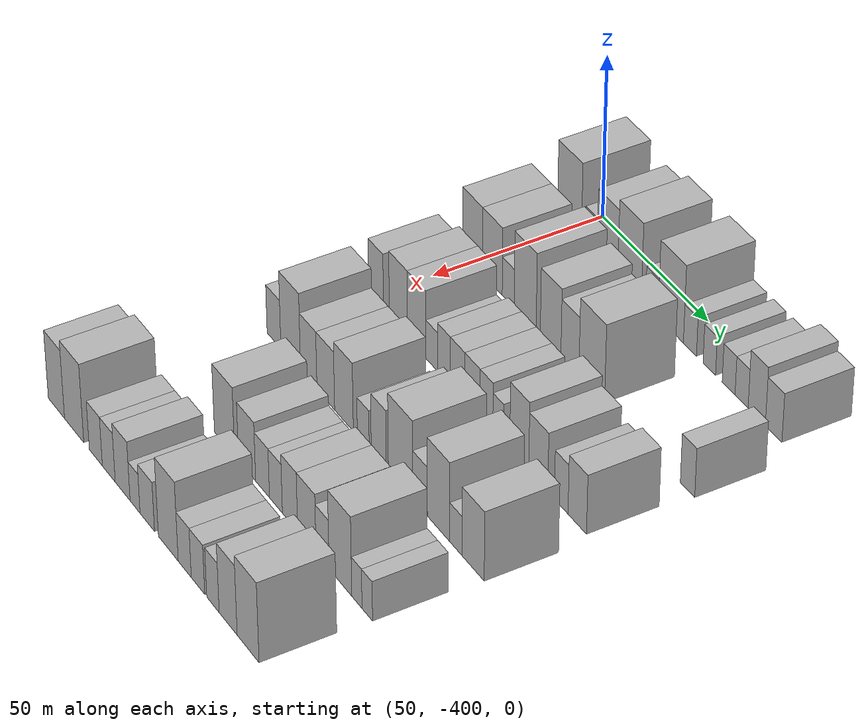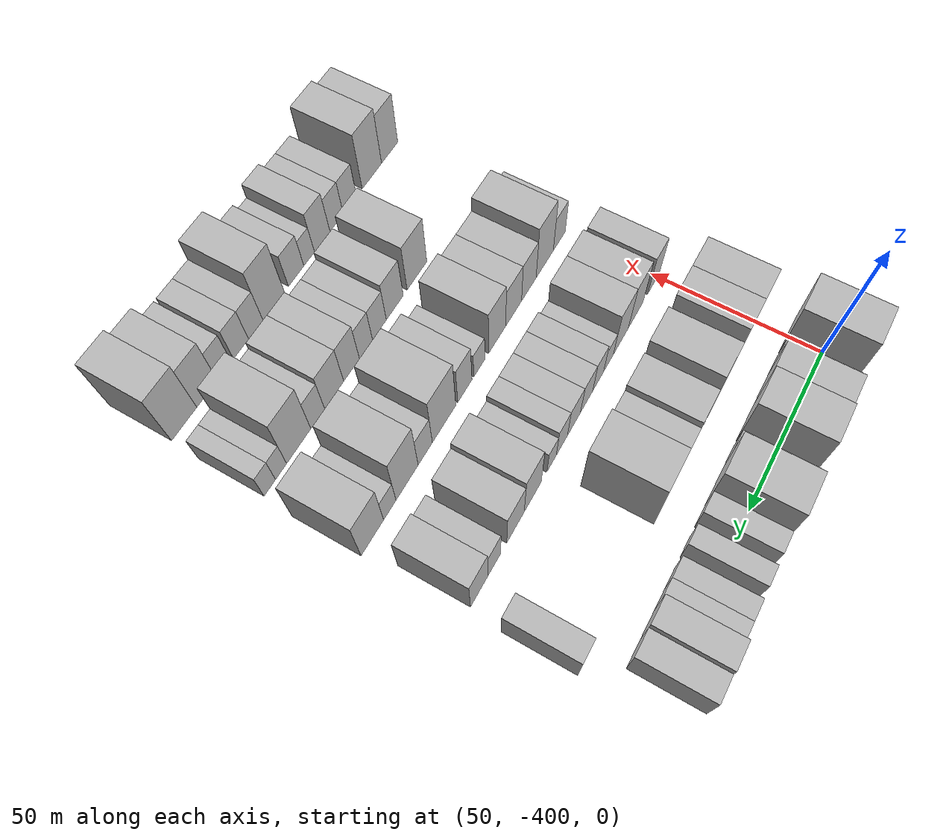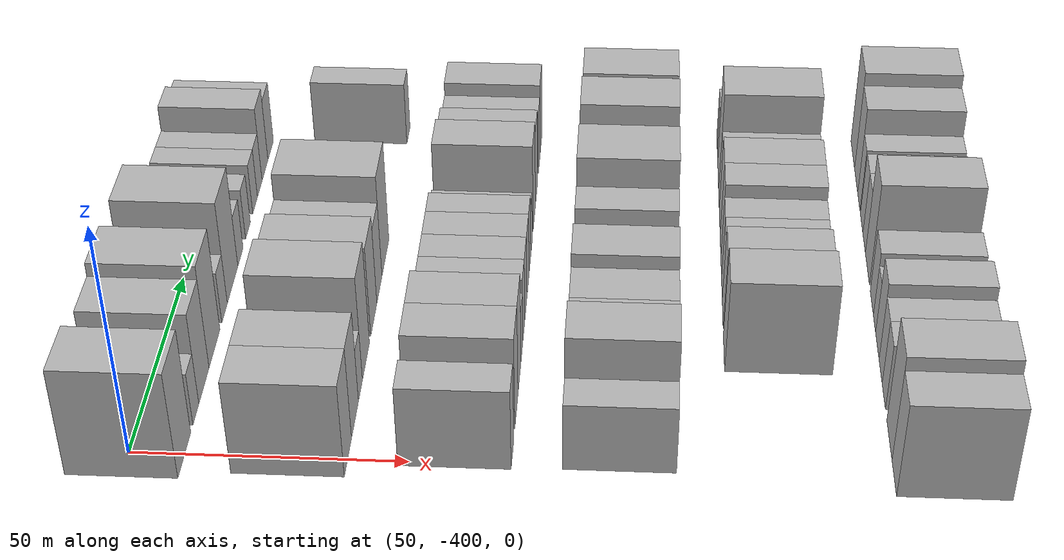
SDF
<sdf version="1.6">
 <world name="default">
  <model name="building_12">
   <static>1</static>
   <pose>50.0000 -400.1555 0 0.000000 0.000000 0.000000</pose>
   <link name="link">
    <pose>0 0 12.00 0 0 0</pose>
    <collision name="collision"><geometry><box><size>20.0000 11.7400 24.0000</size></box></geometry></collision>
    <visual name="visual">
     <cast_shadows>0</cast_shadows>
     <geometry><box><size>20.0000 11.7400 24.0000</size></box></geometry>
     <material>
      <script>
       <uri>model://HANNAS_wall/materials/scripts</uri>
       <uri>model://HANNAS_wall/materials/textures</uri>
       <name>vrc/HANNAS_wall</name>
      </script>
     </material>
    </visual>
   </link>
  </model>
  <model name="building_13">
   <static>1</static>
   <pose>50.0000 -389.4840 0 0.000000 0.000000 0.000000</pose>
   <link name="link">
    <pose>0 0 6.00 0 0 0</pose>
    <collision name="collision"><geometry><box><size>20.0000 5.6029 12.0000</size></box></geometry></collision>
    <visual name="visual">
     <cast_shadows>0</cast_shadows>
     <geometry><box><size>20.0000 5.6029 12.0000</size></box></geometry>
     <material>
      <script>
       <uri>model://HANNAS_wall/materials/scripts</uri>
       <uri>model://HANNAS_wall/materials/textures</uri>
       <name>vrc/HANNAS_wall</name>
      </script>
     </material>
    </visual>
   </link>
  </model>
  <model name="building_14">
   <static>1</static>
   <pose>50.0000 -381.6744 0 0.000000 0.000000 0.000000</pose>
   <link name="link">
    <pose>0 0 10.50 0 0 0</pose>
    <collision name="collision"><geometry><box><size>20.0000 10.0163 21.0000</size></box></geometry></collision>
    <visual name="visual">
     <cast_shadows>0</cast_shadows>
     <geometry><box><size>20.0000 10.0163 21.0000</size></box></geometry>
     <material>
      <script>
       <uri>model://HANNAS_wall/materials/scripts</uri>
       <uri>model://HANNAS_wall/materials/textures</uri>
       <name>vrc/HANNAS_wall</name>
      </script>
     </material>
    </visual>
   </link>
  </model>
  <model name="building_15">
   <static>1</static>
   <pose>50.0000 -371.0635 0 0.000000 0.000000 0.000000</pose>
   <link name="link">
    <pose>0 0 12.00 0 0 0</pose>
    <collision name="collision"><geometry><box><size>20.0000 11.2055 24.0000</size></box></geometry></collision>
    <visual name="visual">
     <cast_shadows>0</cast_shadows>
     <geometry><box><size>20.0000 11.2055 24.0000</size></box></geometry>
     <material>
      <script>
       <uri>model://HANNAS_wall/materials/scripts</uri>
       <uri>model://HANNAS_wall/materials/textures</uri>
       <name>vrc/HANNAS_wall</name>
      </script>
     </material>
    </visual>
   </link>
  </model>
  <model name="building_16">
   <static>1</static>
   <pose>50.0000 -360.5090 0 0.000000 0.000000 0.000000</pose>
   <link name="link">
    <pose>0 0 6.00 0 0 0</pose>
    <collision name="collision"><geometry><box><size>20.0000 5.9036 12.0000</size></box></geometry></collision>
    <visual name="visual">
     <cast_shadows>0</cast_shadows>
     <geometry><box><size>20.0000 5.9036 12.0000</size></box></geometry>
     <material>
      <script>
       <uri>model://HANNAS_wall/materials/scripts</uri>
       <uri>model://HANNAS_wall/materials/textures</uri>
       <name>vrc/HANNAS_wall</name>
      </script>
     </material>
    </visual>
   </link>
  </model>
  <model name="building_17">
   <static>1</static>
   <pose>50.0000 -351.6939 0 0.000000 0.000000 0.000000</pose>
   <link name="link">
    <pose>0 0 12.00 0 0 0</pose>
    <collision name="collision"><geometry><box><size>20.0000 11.7266 24.0000</size></box></geometry></collision>
    <visual name="visual">
     <cast_shadows>0</cast_shadows>
     <geometry><box><size>20.0000 11.7266 24.0000</size></box></geometry>
     <material>
      <script>
       <uri>model://HANNAS_wall/materials/scripts</uri>
       <uri>model://HANNAS_wall/materials/textures</uri>
       <name>vrc/HANNAS_wall</name>
      </script>
     </material>
    </visual>
   </link>
  </model>
  <model name="building_18">
   <static>1</static>
   <pose>50.0000 -342.8308 0 0.000000 0.000000 0.000000</pose>
   <link name="link">
    <pose>0 0 6.00 0 0 0</pose>
    <collision name="collision"><geometry><box><size>20.0000 5.9994 12.0000</size></box></geometry></collision>
    <visual name="visual">
     <cast_shadows>0</cast_shadows>
     <geometry><box><size>20.0000 5.9994 12.0000</size></box></geometry>
     <material>
      <script>
       <uri>model://HANNAS_wall/materials/scripts</uri>
       <uri>model://HANNAS_wall/materials/textures</uri>
       <name>vrc/HANNAS_wall</name>
      </script>
     </material>
    </visual>
   </link>
  </model>
  <model name="building_19">
   <static>1</static>
   <pose>50.0000 -333.9997 0 0.000000 0.000000 0.000000</pose>
   <link name="link">
    <pose>0 0 6.00 0 0 0</pose>
    <collision name="collision"><geometry><box><size>20.0000 5.6628 12.0000</size></box></geometry></collision>
    <visual name="visual">
     <cast_shadows>0</cast_shadows>
     <geometry><box><size>20.0000 5.6628 12.0000</size></box></geometry>
     <material>
      <script>
       <uri>model://HANNAS_wall/materials/scripts</uri>
       <uri>model://HANNAS_wall/materials/textures</uri>
       <name>vrc/HANNAS_wall</name>
      </script>
     </material>
    </visual>
   </link>
  </model>
  <model name="building_20">
   <static>1</static>
   <pose>50.0000 -325.2861 0 0.000000 0.000000 0.000000</pose>
   <link name="link">
    <pose>0 0 6.00 0 0 0</pose>
    <collision name="collision"><geometry><box><size>20.0000 5.7645 12.0000</size></box></geometry></collision>
    <visual name="visual">
     <cast_shadows>0</cast_shadows>
     <geometry><box><size>20.0000 5.7645 12.0000</size></box></geometry>
     <material>
      <script>
       <uri>model://HANNAS_wall/materials/scripts</uri>
       <uri>model://HANNAS_wall/materials/textures</uri>
       <name>vrc/HANNAS_wall</name>
      </script>
     </material>
    </visual>
   </link>
  </model>
  <model name="building_21">
   <static>1</static>
   <pose>50.0000 -319.4922 0 0.000000 0.000000 0.000000</pose>
   <link name="link">
    <pose>0 0 6.00 0 0 0</pose>
    <collision name="collision"><geometry><box><size>20.0000 5.8233 12.0000</size></box></geometry></collision>
    <visual name="visual">
     <cast_shadows>0</cast_shadows>
     <geometry><box><size>20.0000 5.8233 12.0000</size></box></geometry>
     <material>
      <script>
       <uri>model://HANNAS_wall/materials/scripts</uri>
       <uri>model://HANNAS_wall/materials/textures</uri>
       <name>vrc/HANNAS_wall</name>
      </script>
     </material>
    </visual>
   </link>
  </model>
  <model name="building_22">
   <static>1</static>
   <pose>50.0000 -312.7678 0 0.000000 0.000000 0.000000</pose>
   <link name="link">
    <pose>0 0 9.00 0 0 0</pose>
    <collision name="collision"><geometry><box><size>20.0000 7.6255 18.0000</size></box></geometry></collision>
    <visual name="visual">
     <cast_shadows>0</cast_shadows>
     <geometry><box><size>20.0000 7.6255 18.0000</size></box></geometry>
     <material>
      <script>
       <uri>model://HANNAS_wall/materials/scripts</uri>
       <uri>model://HANNAS_wall/materials/textures</uri>
       <name>vrc/HANNAS_wall</name>
      </script>
     </material>
    </visual>
   </link>
  </model>
  <model name="building_23">
   <static>1</static>
   <pose>50.0000 -305.3395 0 0.000000 0.000000 0.000000</pose>
   <link name="link">
    <pose>0 0 7.50 0 0 0</pose>
    <collision name="collision"><geometry><box><size>20.0000 7.2312 15.0000</size></box></geometry></collision>
    <visual name="visual">
     <cast_shadows>0</cast_shadows>
     <geometry><box><size>20.0000 7.2312 15.0000</size></box></geometry>
     <material>
      <script>
       <uri>model://HANNAS_wall/materials/scripts</uri>
       <uri>model://HANNAS_wall/materials/textures</uri>
       <name>vrc/HANNAS_wall</name>
      </script>
     </material>
    </visual>
   </link>
  </model>
  <model name="building_130">
   <static>1</static>
   <pose>79.0000 -399.3459 0 0.000000 0.000000 0.000000</pose>
   <link name="link">
    <pose>0 0 10.50 0 0 0</pose>
    <collision name="collision"><geometry><box><size>20.0000 9.8474 21.0000</size></box></geometry></collision>
    <visual name="visual">
     <cast_shadows>0</cast_shadows>
     <geometry><box><size>20.0000 9.8474 21.0000</size></box></geometry>
     <material>
      <script>
       <uri>model://HANNAS_wall/materials/scripts</uri>
       <uri>model://HANNAS_wall/materials/textures</uri>
       <name>vrc/HANNAS_wall</name>
      </script>
     </material>
    </visual>
   </link>
  </model>
  <model name="building_131">
   <static>1</static>
   <pose>79.0000 -389.4998 0 0.000000 0.000000 0.000000</pose>
   <link name="link">
    <pose>0 0 10.50 0 0 0</pose>
    <collision name="collision"><geometry><box><size>20.0000 9.8448 21.0000</size></box></geometry></collision>
    <visual name="visual">
     <cast_shadows>0</cast_shadows>
     <geometry><box><size>20.0000 9.8448 21.0000</size></box></geometry>
     <material>
      <script>
       <uri>model://HANNAS_wall/materials/scripts</uri>
       <uri>model://HANNAS_wall/materials/textures</uri>
       <name>vrc/HANNAS_wall</name>
      </script>
     </material>
    </visual>
   </link>
  </model>
  <model name="building_132">
   <static>1</static>
   <pose>79.0000 -381.6497 0 0.000000 0.000000 0.000000</pose>
   <link name="link">
    <pose>0 0 6.00 0 0 0</pose>
    <collision name="collision"><geometry><box><size>20.0000 5.8555 12.0000</size></box></geometry></collision>
    <visual name="visual">
     <cast_shadows>0</cast_shadows>
     <geometry><box><size>20.0000 5.8555 12.0000</size></box></geometry>
     <material>
      <script>
       <uri>model://HANNAS_wall/materials/scripts</uri>
       <uri>model://HANNAS_wall/materials/textures</uri>
       <name>vrc/HANNAS_wall</name>
      </script>
     </material>
    </visual>
   </link>
  </model>
  <model name="building_133">
   <static>1</static>
   <pose>79.0000 -373.3757 0 0.000000 0.000000 0.000000</pose>
   <link name="link">
    <pose>0 0 12.00 0 0 0</pose>
    <collision name="collision"><geometry><box><size>20.0000 10.6924 24.0000</size></box></geometry></collision>
    <visual name="visual">
     <cast_shadows>0</cast_shadows>
     <geometry><box><size>20.0000 10.6924 24.0000</size></box></geometry>
     <material>
      <script>
       <uri>model://HANNAS_wall/materials/scripts</uri>
       <uri>model://HANNAS_wall/materials/textures</uri>
       <name>vrc/HANNAS_wall</name>
      </script>
     </material>
    </visual>
   </link>
  </model>
  <model name="building_134">
   <static>1</static>
   <pose>79.0000 -361.1128 0 0.000000 0.000000 0.000000</pose>
   <link name="link">
    <pose>0 0 10.50 0 0 0</pose>
    <collision name="collision"><geometry><box><size>20.0000 9.8335 21.0000</size></box></geometry></collision>
    <visual name="visual">
     <cast_shadows>0</cast_shadows>
     <geometry><box><size>20.0000 9.8335 21.0000</size></box></geometry>
     <material>
      <script>
       <uri>model://HANNAS_wall/materials/scripts</uri>
       <uri>model://HANNAS_wall/materials/textures</uri>
       <name>vrc/HANNAS_wall</name>
      </script>
     </material>
    </visual>
   </link>
  </model>
  <model name="building_135">
   <static>1</static>
   <pose>79.0000 -351.9311 0 0.000000 0.000000 0.000000</pose>
   <link name="link">
    <pose>0 0 9.00 0 0 0</pose>
    <collision name="collision"><geometry><box><size>20.0000 8.5300 18.0000</size></box></geometry></collision>
    <visual name="visual">
     <cast_shadows>0</cast_shadows>
     <geometry><box><size>20.0000 8.5300 18.0000</size></box></geometry>
     <material>
      <script>
       <uri>model://HANNAS_wall/materials/scripts</uri>
       <uri>model://HANNAS_wall/materials/textures</uri>
       <name>vrc/HANNAS_wall</name>
      </script>
     </material>
    </visual>
   </link>
  </model>
  <model name="building_136">
   <static>1</static>
   <pose>79.0000 -341.6739 0 0.000000 0.000000 0.000000</pose>
   <link name="link">
    <pose>0 0 12.00 0 0 0</pose>
    <collision name="collision"><geometry><box><size>20.0000 11.9845 24.0000</size></box></geometry></collision>
    <visual name="visual">
     <cast_shadows>0</cast_shadows>
     <geometry><box><size>20.0000 11.9845 24.0000</size></box></geometry>
     <material>
      <script>
       <uri>model://HANNAS_wall/materials/scripts</uri>
       <uri>model://HANNAS_wall/materials/textures</uri>
       <name>vrc/HANNAS_wall</name>
      </script>
     </material>
    </visual>
   </link>
  </model>
  <model name="building_137">
   <static>1</static>
   <pose>79.0000 -298.1420 0 0.000000 0.000000 0.000000</pose>
   <link name="link">
    <pose>0 0 7.50 0 0 0</pose>
    <collision name="collision"><geometry><box><size>20.0000 6.3598 15.0000</size></box></geometry></collision>
    <visual name="visual">
     <cast_shadows>0</cast_shadows>
     <geometry><box><size>20.0000 6.3598 15.0000</size></box></geometry>
     <material>
      <script>
       <uri>model://HANNAS_wall/materials/scripts</uri>
       <uri>model://HANNAS_wall/materials/textures</uri>
       <name>vrc/HANNAS_wall</name>
      </script>
     </material>
    </visual>
   </link>
  </model>
  <model name="building_243">
   <static>1</static>
   <pose>108.0000 -397.2218 0 0.000000 0.000000 0.000000</pose>
   <link name="link">
    <pose>0 0 9.00 0 0 0</pose>
    <collision name="collision"><geometry><box><size>20.0000 7.4830 18.0000</size></box></geometry></collision>
    <visual name="visual">
     <cast_shadows>0</cast_shadows>
     <geometry><box><size>20.0000 7.4830 18.0000</size></box></geometry>
     <material>
      <script>
       <uri>model://HANNAS_wall/materials/scripts</uri>
       <uri>model://HANNAS_wall/materials/textures</uri>
       <name>vrc/HANNAS_wall</name>
      </script>
     </material>
    </visual>
   </link>
  </model>
  <model name="building_244">
   <static>1</static>
   <pose>108.0000 -385.9127 0 0.000000 0.000000 0.000000</pose>
   <link name="link">
    <pose>0 0 10.50 0 0 0</pose>
    <collision name="collision"><geometry><box><size>20.0000 9.1353 21.0000</size></box></geometry></collision>
    <visual name="visual">
     <cast_shadows>0</cast_shadows>
     <geometry><box><size>20.0000 9.1353 21.0000</size></box></geometry>
     <material>
      <script>
       <uri>model://HANNAS_wall/materials/scripts</uri>
       <uri>model://HANNAS_wall/materials/textures</uri>
       <name>vrc/HANNAS_wall</name>
      </script>
     </material>
    </visual>
   </link>
  </model>
  <model name="building_245">
   <static>1</static>
   <pose>108.0000 -376.7614 0 0.000000 0.000000 0.000000</pose>
   <link name="link">
    <pose>0 0 10.50 0 0 0</pose>
    <collision name="collision"><geometry><box><size>20.0000 9.1673 21.0000</size></box></geometry></collision>
    <visual name="visual">
     <cast_shadows>0</cast_shadows>
     <geometry><box><size>20.0000 9.1673 21.0000</size></box></geometry>
     <material>
      <script>
       <uri>model://HANNAS_wall/materials/scripts</uri>
       <uri>model://HANNAS_wall/materials/textures</uri>
       <name>vrc/HANNAS_wall</name>
      </script>
     </material>
    </visual>
   </link>
  </model>
  <model name="building_246">
   <static>1</static>
   <pose>108.0000 -369.2996 0 0.000000 0.000000 0.000000</pose>
   <link name="link">
    <pose>0 0 6.00 0 0 0</pose>
    <collision name="collision"><geometry><box><size>20.0000 5.7562 12.0000</size></box></geometry></collision>
    <visual name="visual">
     <cast_shadows>0</cast_shadows>
     <geometry><box><size>20.0000 5.7562 12.0000</size></box></geometry>
     <material>
      <script>
       <uri>model://HANNAS_wall/materials/scripts</uri>
       <uri>model://HANNAS_wall/materials/textures</uri>
       <name>vrc/HANNAS_wall</name>
      </script>
     </material>
    </visual>
   </link>
  </model>
  <model name="building_247">
   <static>1</static>
   <pose>108.0000 -363.2638 0 0.000000 0.000000 0.000000</pose>
   <link name="link">
    <pose>0 0 7.50 0 0 0</pose>
    <collision name="collision"><geometry><box><size>20.0000 6.3155 15.0000</size></box></geometry></collision>
    <visual name="visual">
     <cast_shadows>0</cast_shadows>
     <geometry><box><size>20.0000 6.3155 15.0000</size></box></geometry>
     <material>
      <script>
       <uri>model://HANNAS_wall/materials/scripts</uri>
       <uri>model://HANNAS_wall/materials/textures</uri>
       <name>vrc/HANNAS_wall</name>
      </script>
     </material>
    </visual>
   </link>
  </model>
  <model name="building_248">
   <static>1</static>
   <pose>108.0000 -356.6235 0 0.000000 0.000000 0.000000</pose>
   <link name="link">
    <pose>0 0 7.50 0 0 0</pose>
    <collision name="collision"><geometry><box><size>20.0000 6.9650 15.0000</size></box></geometry></collision>
    <visual name="visual">
     <cast_shadows>0</cast_shadows>
     <geometry><box><size>20.0000 6.9650 15.0000</size></box></geometry>
     <material>
      <script>
       <uri>model://HANNAS_wall/materials/scripts</uri>
       <uri>model://HANNAS_wall/materials/textures</uri>
       <name>vrc/HANNAS_wall</name>
      </script>
     </material>
    </visual>
   </link>
  </model>
  <model name="building_249">
   <static>1</static>
   <pose>108.0000 -349.4811 0 0.000000 0.000000 0.000000</pose>
   <link name="link">
    <pose>0 0 7.50 0 0 0</pose>
    <collision name="collision"><geometry><box><size>20.0000 7.3197 15.0000</size></box></geometry></collision>
    <visual name="visual">
     <cast_shadows>0</cast_shadows>
     <geometry><box><size>20.0000 7.3197 15.0000</size></box></geometry>
     <material>
      <script>
       <uri>model://HANNAS_wall/materials/scripts</uri>
       <uri>model://HANNAS_wall/materials/textures</uri>
       <name>vrc/HANNAS_wall</name>
      </script>
     </material>
    </visual>
   </link>
  </model>
  <model name="building_250">
   <static>1</static>
   <pose>108.0000 -342.7675 0 0.000000 0.000000 0.000000</pose>
   <link name="link">
    <pose>0 0 7.50 0 0 0</pose>
    <collision name="collision"><geometry><box><size>20.0000 6.1077 15.0000</size></box></geometry></collision>
    <visual name="visual">
     <cast_shadows>0</cast_shadows>
     <geometry><box><size>20.0000 6.1077 15.0000</size></box></geometry>
     <material>
      <script>
       <uri>model://HANNAS_wall/materials/scripts</uri>
       <uri>model://HANNAS_wall/materials/textures</uri>
       <name>vrc/HANNAS_wall</name>
      </script>
     </material>
    </visual>
   </link>
  </model>
  <model name="building_251">
   <static>1</static>
   <pose>108.0000 -337.1984 0 0.000000 0.000000 0.000000</pose>
   <link name="link">
    <pose>0 0 6.00 0 0 0</pose>
    <collision name="collision"><geometry><box><size>20.0000 5.0304 12.0000</size></box></geometry></collision>
    <visual name="visual">
     <cast_shadows>0</cast_shadows>
     <geometry><box><size>20.0000 5.0304 12.0000</size></box></geometry>
     <material>
      <script>
       <uri>model://HANNAS_wall/materials/scripts</uri>
       <uri>model://HANNAS_wall/materials/textures</uri>
       <name>vrc/HANNAS_wall</name>
      </script>
     </material>
    </visual>
   </link>
  </model>
  <model name="building_252">
   <static>1</static>
   <pose>108.0000 -327.2433 0 0.000000 0.000000 0.000000</pose>
   <link name="link">
    <pose>0 0 10.50 0 0 0</pose>
    <collision name="collision"><geometry><box><size>20.0000 8.8799 21.0000</size></box></geometry></collision>
    <visual name="visual">
     <cast_shadows>0</cast_shadows>
     <geometry><box><size>20.0000 8.8799 21.0000</size></box></geometry>
     <material>
      <script>
       <uri>model://HANNAS_wall/materials/scripts</uri>
       <uri>model://HANNAS_wall/materials/textures</uri>
       <name>vrc/HANNAS_wall</name>
      </script>
     </material>
    </visual>
   </link>
  </model>
  <model name="building_253">
   <static>1</static>
   <pose>108.0000 -318.3898 0 0.000000 0.000000 0.000000</pose>
   <link name="link">
    <pose>0 0 9.00 0 0 0</pose>
    <collision name="collision"><geometry><box><size>20.0000 8.8270 18.0000</size></box></geometry></collision>
    <visual name="visual">
     <cast_shadows>0</cast_shadows>
     <geometry><box><size>20.0000 8.8270 18.0000</size></box></geometry>
     <material>
      <script>
       <uri>model://HANNAS_wall/materials/scripts</uri>
       <uri>model://HANNAS_wall/materials/textures</uri>
       <name>vrc/HANNAS_wall</name>
      </script>
     </material>
    </visual>
   </link>
  </model>
  <model name="building_254">
   <static>1</static>
   <pose>108.0000 -307.8682 0 0.000000 0.000000 0.000000</pose>
   <link name="link">
    <pose>0 0 7.50 0 0 0</pose>
    <collision name="collision"><geometry><box><size>20.0000 6.2161 15.0000</size></box></geometry></collision>
    <visual name="visual">
     <cast_shadows>0</cast_shadows>
     <geometry><box><size>20.0000 6.2161 15.0000</size></box></geometry>
     <material>
      <script>
       <uri>model://HANNAS_wall/materials/scripts</uri>
       <uri>model://HANNAS_wall/materials/textures</uri>
       <name>vrc/HANNAS_wall</name>
      </script>
     </material>
    </visual>
   </link>
  </model>
  <model name="building_255">
   <static>1</static>
   <pose>108.0000 -300.5894 0 0.000000 0.000000 0.000000</pose>
   <link name="link">
    <pose>0 0 9.00 0 0 0</pose>
    <collision name="collision"><geometry><box><size>20.0000 8.3415 18.0000</size></box></geometry></collision>
    <visual name="visual">
     <cast_shadows>0</cast_shadows>
     <geometry><box><size>20.0000 8.3415 18.0000</size></box></geometry>
     <material>
      <script>
       <uri>model://HANNAS_wall/materials/scripts</uri>
       <uri>model://HANNAS_wall/materials/textures</uri>
       <name>vrc/HANNAS_wall</name>
      </script>
     </material>
    </visual>
   </link>
  </model>
  <model name="building_360">
   <static>1</static>
   <pose>137.0000 -396.9159 0 0.000000 0.000000 0.000000</pose>
   <link name="link">
    <pose>0 0 7.50 0 0 0</pose>
    <collision name="collision"><geometry><box><size>20.0000 7.1711 15.0000</size></box></geometry></collision>
    <visual name="visual">
     <cast_shadows>0</cast_shadows>
     <geometry><box><size>20.0000 7.1711 15.0000</size></box></geometry>
     <material>
      <script>
       <uri>model://HANNAS_wall/materials/scripts</uri>
       <uri>model://HANNAS_wall/materials/textures</uri>
       <name>vrc/HANNAS_wall</name>
      </script>
     </material>
    </visual>
   </link>
  </model>
  <model name="building_361">
   <static>1</static>
   <pose>137.0000 -388.2338 0 0.000000 0.000000 0.000000</pose>
   <link name="link">
    <pose>0 0 12.00 0 0 0</pose>
    <collision name="collision"><geometry><box><size>20.0000 10.1930 24.0000</size></box></geometry></collision>
    <visual name="visual">
     <cast_shadows>0</cast_shadows>
     <geometry><box><size>20.0000 10.1930 24.0000</size></box></geometry>
     <material>
      <script>
       <uri>model://HANNAS_wall/materials/scripts</uri>
       <uri>model://HANNAS_wall/materials/textures</uri>
       <name>vrc/HANNAS_wall</name>
      </script>
     </material>
    </visual>
   </link>
  </model>
  <model name="building_362">
   <static>1</static>
   <pose>137.0000 -378.9464 0 0.000000 0.000000 0.000000</pose>
   <link name="link">
    <pose>0 0 9.00 0 0 0</pose>
    <collision name="collision"><geometry><box><size>20.0000 8.3819 18.0000</size></box></geometry></collision>
    <visual name="visual">
     <cast_shadows>0</cast_shadows>
     <geometry><box><size>20.0000 8.3819 18.0000</size></box></geometry>
     <material>
      <script>
       <uri>model://HANNAS_wall/materials/scripts</uri>
       <uri>model://HANNAS_wall/materials/textures</uri>
       <name>vrc/HANNAS_wall</name>
      </script>
     </material>
    </visual>
   </link>
  </model>
  <model name="building_363">
   <static>1</static>
   <pose>137.0000 -370.2915 0 0.000000 0.000000 0.000000</pose>
   <link name="link">
    <pose>0 0 9.00 0 0 0</pose>
    <collision name="collision"><geometry><box><size>20.0000 8.9278 18.0000</size></box></geometry></collision>
    <visual name="visual">
     <cast_shadows>0</cast_shadows>
     <geometry><box><size>20.0000 8.9278 18.0000</size></box></geometry>
     <material>
      <script>
       <uri>model://HANNAS_wall/materials/scripts</uri>
       <uri>model://HANNAS_wall/materials/textures</uri>
       <name>vrc/HANNAS_wall</name>
      </script>
     </material>
    </visual>
   </link>
  </model>
  <model name="building_364">
   <static>1</static>
   <pose>137.0000 -361.1597 0 0.000000 0.000000 0.000000</pose>
   <link name="link">
    <pose>0 0 10.50 0 0 0</pose>
    <collision name="collision"><geometry><box><size>20.0000 9.3357 21.0000</size></box></geometry></collision>
    <visual name="visual">
     <cast_shadows>0</cast_shadows>
     <geometry><box><size>20.0000 9.3357 21.0000</size></box></geometry>
     <material>
      <script>
       <uri>model://HANNAS_wall/materials/scripts</uri>
       <uri>model://HANNAS_wall/materials/textures</uri>
       <name>vrc/HANNAS_wall</name>
      </script>
     </material>
    </visual>
   </link>
  </model>
  <model name="building_365">
   <static>1</static>
   <pose>137.0000 -351.5648 0 0.000000 0.000000 0.000000</pose>
   <link name="link">
    <pose>0 0 6.00 0 0 0</pose>
    <collision name="collision"><geometry><box><size>20.0000 5.8542 12.0000</size></box></geometry></collision>
    <visual name="visual">
     <cast_shadows>0</cast_shadows>
     <geometry><box><size>20.0000 5.8542 12.0000</size></box></geometry>
     <material>
      <script>
       <uri>model://HANNAS_wall/materials/scripts</uri>
       <uri>model://HANNAS_wall/materials/textures</uri>
       <name>vrc/HANNAS_wall</name>
      </script>
     </material>
    </visual>
   </link>
  </model>
  <model name="building_366">
   <static>1</static>
   <pose>137.0000 -343.9677 0 0.000000 0.000000 0.000000</pose>
   <link name="link">
    <pose>0 0 9.00 0 0 0</pose>
    <collision name="collision"><geometry><box><size>20.0000 7.3401 18.0000</size></box></geometry></collision>
    <visual name="visual">
     <cast_shadows>0</cast_shadows>
     <geometry><box><size>20.0000 7.3401 18.0000</size></box></geometry>
     <material>
      <script>
       <uri>model://HANNAS_wall/materials/scripts</uri>
       <uri>model://HANNAS_wall/materials/textures</uri>
       <name>vrc/HANNAS_wall</name>
      </script>
     </material>
    </visual>
   </link>
  </model>
  <model name="building_367">
   <static>1</static>
   <pose>137.0000 -333.3986 0 0.000000 0.000000 0.000000</pose>
   <link name="link">
    <pose>0 0 12.00 0 0 0</pose>
    <collision name="collision"><geometry><box><size>20.0000 11.7982 24.0000</size></box></geometry></collision>
    <visual name="visual">
     <cast_shadows>0</cast_shadows>
     <geometry><box><size>20.0000 11.7982 24.0000</size></box></geometry>
     <material>
      <script>
       <uri>model://HANNAS_wall/materials/scripts</uri>
       <uri>model://HANNAS_wall/materials/textures</uri>
       <name>vrc/HANNAS_wall</name>
      </script>
     </material>
    </visual>
   </link>
  </model>
  <model name="building_368">
   <static>1</static>
   <pose>137.0000 -324.0457 0 0.000000 0.000000 0.000000</pose>
   <link name="link">
    <pose>0 0 7.50 0 0 0</pose>
    <collision name="collision"><geometry><box><size>20.0000 6.9074 15.0000</size></box></geometry></collision>
    <visual name="visual">
     <cast_shadows>0</cast_shadows>
     <geometry><box><size>20.0000 6.9074 15.0000</size></box></geometry>
     <material>
      <script>
       <uri>model://HANNAS_wall/materials/scripts</uri>
       <uri>model://HANNAS_wall/materials/textures</uri>
       <name>vrc/HANNAS_wall</name>
      </script>
     </material>
    </visual>
   </link>
  </model>
  <model name="building_369">
   <static>1</static>
   <pose>137.0000 -315.3218 0 0.000000 0.000000 0.000000</pose>
   <link name="link">
    <pose>0 0 12.00 0 0 0</pose>
    <collision name="collision"><geometry><box><size>20.0000 10.5404 24.0000</size></box></geometry></collision>
    <visual name="visual">
     <cast_shadows>0</cast_shadows>
     <geometry><box><size>20.0000 10.5404 24.0000</size></box></geometry>
     <material>
      <script>
       <uri>model://HANNAS_wall/materials/scripts</uri>
       <uri>model://HANNAS_wall/materials/textures</uri>
       <name>vrc/HANNAS_wall</name>
      </script>
     </material>
    </visual>
   </link>
  </model>
  <model name="building_370">
   <static>1</static>
   <pose>137.0000 -307.1736 0 0.000000 0.000000 0.000000</pose>
   <link name="link">
    <pose>0 0 6.00 0 0 0</pose>
    <collision name="collision"><geometry><box><size>20.0000 5.7560 12.0000</size></box></geometry></collision>
    <visual name="visual">
     <cast_shadows>0</cast_shadows>
     <geometry><box><size>20.0000 5.7560 12.0000</size></box></geometry>
     <material>
      <script>
       <uri>model://HANNAS_wall/materials/scripts</uri>
       <uri>model://HANNAS_wall/materials/textures</uri>
       <name>vrc/HANNAS_wall</name>
      </script>
     </material>
    </visual>
   </link>
  </model>
  <model name="building_371">
   <static>1</static>
   <pose>137.0000 -299.2119 0 0.000000 0.000000 0.000000</pose>
   <link name="link">
    <pose>0 0 10.50 0 0 0</pose>
    <collision name="collision"><geometry><box><size>20.0000 10.1675 21.0000</size></box></geometry></collision>
    <visual name="visual">
     <cast_shadows>0</cast_shadows>
     <geometry><box><size>20.0000 10.1675 21.0000</size></box></geometry>
     <material>
      <script>
       <uri>model://HANNAS_wall/materials/scripts</uri>
       <uri>model://HANNAS_wall/materials/textures</uri>
       <name>vrc/HANNAS_wall</name>
      </script>
     </material>
    </visual>
   </link>
  </model>
  <model name="building_471">
   <static>1</static>
   <pose>166.0000 -367.7511 0 0.000000 0.000000 0.000000</pose>
   <link name="link">
    <pose>0 0 10.50 0 0 0</pose>
    <collision name="collision"><geometry><box><size>20.0000 10.4405 21.0000</size></box></geometry></collision>
    <visual name="visual">
     <cast_shadows>0</cast_shadows>
     <geometry><box><size>20.0000 10.4405 21.0000</size></box></geometry>
     <material>
      <script>
       <uri>model://HANNAS_wall/materials/scripts</uri>
       <uri>model://HANNAS_wall/materials/textures</uri>
       <name>vrc/HANNAS_wall</name>
      </script>
     </material>
    </visual>
   </link>
  </model>
  <model name="building_472">
   <static>1</static>
   <pose>166.0000 -356.1971 0 0.000000 0.000000 0.000000</pose>
   <link name="link">
    <pose>0 0 9.00 0 0 0</pose>
    <collision name="collision"><geometry><box><size>20.0000 8.6676 18.0000</size></box></geometry></collision>
    <visual name="visual">
     <cast_shadows>0</cast_shadows>
     <geometry><box><size>20.0000 8.6676 18.0000</size></box></geometry>
     <material>
      <script>
       <uri>model://HANNAS_wall/materials/scripts</uri>
       <uri>model://HANNAS_wall/materials/textures</uri>
       <name>vrc/HANNAS_wall</name>
      </script>
     </material>
    </visual>
   </link>
  </model>
  <model name="building_473">
   <static>1</static>
   <pose>166.0000 -348.3898 0 0.000000 0.000000 0.000000</pose>
   <link name="link">
    <pose>0 0 7.50 0 0 0</pose>
    <collision name="collision"><geometry><box><size>20.0000 6.9470 15.0000</size></box></geometry></collision>
    <visual name="visual">
     <cast_shadows>0</cast_shadows>
     <geometry><box><size>20.0000 6.9470 15.0000</size></box></geometry>
     <material>
      <script>
       <uri>model://HANNAS_wall/materials/scripts</uri>
       <uri>model://HANNAS_wall/materials/textures</uri>
       <name>vrc/HANNAS_wall</name>
      </script>
     </material>
    </visual>
   </link>
  </model>
  <model name="building_474">
   <static>1</static>
   <pose>166.0000 -341.6925 0 0.000000 0.000000 0.000000</pose>
   <link name="link">
    <pose>0 0 7.50 0 0 0</pose>
    <collision name="collision"><geometry><box><size>20.0000 6.4476 15.0000</size></box></geometry></collision>
    <visual name="visual">
     <cast_shadows>0</cast_shadows>
     <geometry><box><size>20.0000 6.4476 15.0000</size></box></geometry>
     <material>
      <script>
       <uri>model://HANNAS_wall/materials/scripts</uri>
       <uri>model://HANNAS_wall/materials/textures</uri>
       <name>vrc/HANNAS_wall</name>
      </script>
     </material>
    </visual>
   </link>
  </model>
  <model name="building_475">
   <static>1</static>
   <pose>166.0000 -334.6840 0 0.000000 0.000000 0.000000</pose>
   <link name="link">
    <pose>0 0 9.00 0 0 0</pose>
    <collision name="collision"><geometry><box><size>20.0000 7.5695 18.0000</size></box></geometry></collision>
    <visual name="visual">
     <cast_shadows>0</cast_shadows>
     <geometry><box><size>20.0000 7.5695 18.0000</size></box></geometry>
     <material>
      <script>
       <uri>model://HANNAS_wall/materials/scripts</uri>
       <uri>model://HANNAS_wall/materials/textures</uri>
       <name>vrc/HANNAS_wall</name>
      </script>
     </material>
    </visual>
   </link>
  </model>
  <model name="building_476">
   <static>1</static>
   <pose>166.0000 -326.4165 0 0.000000 0.000000 0.000000</pose>
   <link name="link">
    <pose>0 0 9.00 0 0 0</pose>
    <collision name="collision"><geometry><box><size>20.0000 8.9654 18.0000</size></box></geometry></collision>
    <visual name="visual">
     <cast_shadows>0</cast_shadows>
     <geometry><box><size>20.0000 8.9654 18.0000</size></box></geometry>
     <material>
      <script>
       <uri>model://HANNAS_wall/materials/scripts</uri>
       <uri>model://HANNAS_wall/materials/textures</uri>
       <name>vrc/HANNAS_wall</name>
      </script>
     </material>
    </visual>
   </link>
  </model>
  <model name="building_477">
   <static>1</static>
   <pose>166.0000 -318.7632 0 0.000000 0.000000 0.000000</pose>
   <link name="link">
    <pose>0 0 7.50 0 0 0</pose>
    <collision name="collision"><geometry><box><size>20.0000 6.3411 15.0000</size></box></geometry></collision>
    <visual name="visual">
     <cast_shadows>0</cast_shadows>
     <geometry><box><size>20.0000 6.3411 15.0000</size></box></geometry>
     <material>
      <script>
       <uri>model://HANNAS_wall/materials/scripts</uri>
       <uri>model://HANNAS_wall/materials/textures</uri>
       <name>vrc/HANNAS_wall</name>
      </script>
     </material>
    </visual>
   </link>
  </model>
  <model name="building_478">
   <static>1</static>
   <pose>166.0000 -310.1814 0 0.000000 0.000000 0.000000</pose>
   <link name="link">
    <pose>0 0 12.00 0 0 0</pose>
    <collision name="collision"><geometry><box><size>20.0000 10.8226 24.0000</size></box></geometry></collision>
    <visual name="visual">
     <cast_shadows>0</cast_shadows>
     <geometry><box><size>20.0000 10.8226 24.0000</size></box></geometry>
     <material>
      <script>
       <uri>model://HANNAS_wall/materials/scripts</uri>
       <uri>model://HANNAS_wall/materials/textures</uri>
       <name>vrc/HANNAS_wall</name>
      </script>
     </material>
    </visual>
   </link>
  </model>
  <model name="building_479">
   <static>1</static>
   <pose>166.0000 -302.3573 0 0.000000 0.000000 0.000000</pose>
   <link name="link">
    <pose>0 0 6.00 0 0 0</pose>
    <collision name="collision"><geometry><box><size>20.0000 4.8257 12.0000</size></box></geometry></collision>
    <visual name="visual">
     <cast_shadows>0</cast_shadows>
     <geometry><box><size>20.0000 4.8257 12.0000</size></box></geometry>
     <material>
      <script>
       <uri>model://HANNAS_wall/materials/scripts</uri>
       <uri>model://HANNAS_wall/materials/textures</uri>
       <name>vrc/HANNAS_wall</name>
      </script>
     </material>
    </visual>
   </link>
  </model>
  <model name="building_480">
   <static>1</static>
   <pose>166.0000 -297.4722 0 0.000000 0.000000 0.000000</pose>
   <link name="link">
    <pose>0 0 6.00 0 0 0</pose>
    <collision name="collision"><geometry><box><size>20.0000 4.9443 12.0000</size></box></geometry></collision>
    <visual name="visual">
     <cast_shadows>0</cast_shadows>
     <geometry><box><size>20.0000 4.9443 12.0000</size></box></geometry>
     <material>
      <script>
       <uri>model://HANNAS_wall/materials/scripts</uri>
       <uri>model://HANNAS_wall/materials/textures</uri>
       <name>vrc/HANNAS_wall</name>
      </script>
     </material>
    </visual>
   </link>
  </model>
  <model name="building_582">
   <static>1</static>
   <pose>195.0000 -399.9698 0 0.000000 0.000000 0.000000</pose>
   <link name="link">
    <pose>0 0 10.50 0 0 0</pose>
    <collision name="collision"><geometry><box><size>20.0000 8.9349 21.0000</size></box></geometry></collision>
    <visual name="visual">
     <cast_shadows>0</cast_shadows>
     <geometry><box><size>20.0000 8.9349 21.0000</size></box></geometry>
     <material>
      <script>
       <uri>model://HANNAS_wall/materials/scripts</uri>
       <uri>model://HANNAS_wall/materials/textures</uri>
       <name>vrc/HANNAS_wall</name>
      </script>
     </material>
    </visual>
   </link>
  </model>
  <model name="building_583">
   <static>1</static>
   <pose>195.0000 -390.2613 0 0.000000 0.000000 0.000000</pose>
   <link name="link">
    <pose>0 0 12.00 0 0 0</pose>
    <collision name="collision"><geometry><box><size>20.0000 10.4821 24.0000</size></box></geometry></collision>
    <visual name="visual">
     <cast_shadows>0</cast_shadows>
     <geometry><box><size>20.0000 10.4821 24.0000</size></box></geometry>
     <material>
      <script>
       <uri>model://HANNAS_wall/materials/scripts</uri>
       <uri>model://HANNAS_wall/materials/textures</uri>
       <name>vrc/HANNAS_wall</name>
      </script>
     </material>
    </visual>
   </link>
  </model>
  <model name="building_584">
   <static>1</static>
   <pose>195.0000 -378.5193 0 0.000000 0.000000 0.000000</pose>
   <link name="link">
    <pose>0 0 7.50 0 0 0</pose>
    <collision name="collision"><geometry><box><size>20.0000 7.0018 15.0000</size></box></geometry></collision>
    <visual name="visual">
     <cast_shadows>0</cast_shadows>
     <geometry><box><size>20.0000 7.0018 15.0000</size></box></geometry>
     <material>
      <script>
       <uri>model://HANNAS_wall/materials/scripts</uri>
       <uri>model://HANNAS_wall/materials/textures</uri>
       <name>vrc/HANNAS_wall</name>
      </script>
     </material>
    </visual>
   </link>
  </model>
  <model name="building_585">
   <static>1</static>
   <pose>195.0000 -371.5916 0 0.000000 0.000000 0.000000</pose>
   <link name="link">
    <pose>0 0 7.50 0 0 0</pose>
    <collision name="collision"><geometry><box><size>20.0000 6.8536 15.0000</size></box></geometry></collision>
    <visual name="visual">
     <cast_shadows>0</cast_shadows>
     <geometry><box><size>20.0000 6.8536 15.0000</size></box></geometry>
     <material>
      <script>
       <uri>model://HANNAS_wall/materials/scripts</uri>
       <uri>model://HANNAS_wall/materials/textures</uri>
       <name>vrc/HANNAS_wall</name>
      </script>
     </material>
    </visual>
   </link>
  </model>
  <model name="building_586">
   <static>1</static>
   <pose>195.0000 -364.2558 0 0.000000 0.000000 0.000000</pose>
   <link name="link">
    <pose>0 0 9.00 0 0 0</pose>
    <collision name="collision"><geometry><box><size>20.0000 7.8181 18.0000</size></box></geometry></collision>
    <visual name="visual">
     <cast_shadows>0</cast_shadows>
     <geometry><box><size>20.0000 7.8181 18.0000</size></box></geometry>
     <material>
      <script>
       <uri>model://HANNAS_wall/materials/scripts</uri>
       <uri>model://HANNAS_wall/materials/textures</uri>
       <name>vrc/HANNAS_wall</name>
      </script>
     </material>
    </visual>
   </link>
  </model>
  <model name="building_587">
   <static>1</static>
   <pose>195.0000 -357.7354 0 0.000000 0.000000 0.000000</pose>
   <link name="link">
    <pose>0 0 6.00 0 0 0</pose>
    <collision name="collision"><geometry><box><size>20.0000 5.2226 12.0000</size></box></geometry></collision>
    <visual name="visual">
     <cast_shadows>0</cast_shadows>
     <geometry><box><size>20.0000 5.2226 12.0000</size></box></geometry>
     <material>
      <script>
       <uri>model://HANNAS_wall/materials/scripts</uri>
       <uri>model://HANNAS_wall/materials/textures</uri>
       <name>vrc/HANNAS_wall</name>
      </script>
     </material>
    </visual>
   </link>
  </model>
  <model name="building_588">
   <static>1</static>
   <pose>195.0000 -351.3753 0 0.000000 0.000000 0.000000</pose>
   <link name="link">
    <pose>0 0 7.50 0 0 0</pose>
    <collision name="collision"><geometry><box><size>20.0000 7.4976 15.0000</size></box></geometry></collision>
    <visual name="visual">
     <cast_shadows>0</cast_shadows>
     <geometry><box><size>20.0000 7.4976 15.0000</size></box></geometry>
     <material>
      <script>
       <uri>model://HANNAS_wall/materials/scripts</uri>
       <uri>model://HANNAS_wall/materials/textures</uri>
       <name>vrc/HANNAS_wall</name>
      </script>
     </material>
    </visual>
   </link>
  </model>
  <model name="building_589">
   <static>1</static>
   <pose>195.0000 -340.5693 0 0.000000 0.000000 0.000000</pose>
   <link name="link">
    <pose>0 0 12.00 0 0 0</pose>
    <collision name="collision"><geometry><box><size>20.0000 10.1145 24.0000</size></box></geometry></collision>
    <visual name="visual">
     <cast_shadows>0</cast_shadows>
     <geometry><box><size>20.0000 10.1145 24.0000</size></box></geometry>
     <material>
      <script>
       <uri>model://HANNAS_wall/materials/scripts</uri>
       <uri>model://HANNAS_wall/materials/textures</uri>
       <name>vrc/HANNAS_wall</name>
      </script>
     </material>
    </visual>
   </link>
  </model>
  <model name="building_590">
   <static>1</static>
   <pose>195.0000 -332.2098 0 0.000000 0.000000 0.000000</pose>
   <link name="link">
    <pose>0 0 7.50 0 0 0</pose>
    <collision name="collision"><geometry><box><size>20.0000 6.6045 15.0000</size></box></geometry></collision>
    <visual name="visual">
     <cast_shadows>0</cast_shadows>
     <geometry><box><size>20.0000 6.6045 15.0000</size></box></geometry>
     <material>
      <script>
       <uri>model://HANNAS_wall/materials/scripts</uri>
       <uri>model://HANNAS_wall/materials/textures</uri>
       <name>vrc/HANNAS_wall</name>
      </script>
     </material>
    </visual>
   </link>
  </model>
  <model name="building_591">
   <static>1</static>
   <pose>195.0000 -325.5293 0 0.000000 0.000000 0.000000</pose>
   <link name="link">
    <pose>0 0 7.50 0 0 0</pose>
    <collision name="collision"><geometry><box><size>20.0000 6.7566 15.0000</size></box></geometry></collision>
    <visual name="visual">
     <cast_shadows>0</cast_shadows>
     <geometry><box><size>20.0000 6.7566 15.0000</size></box></geometry>
     <material>
      <script>
       <uri>model://HANNAS_wall/materials/scripts</uri>
       <uri>model://HANNAS_wall/materials/textures</uri>
       <name>vrc/HANNAS_wall</name>
      </script>
     </material>
    </visual>
   </link>
  </model>
  <model name="building_592">
   <static>1</static>
   <pose>195.0000 -318.0810 0 0.000000 0.000000 0.000000</pose>
   <link name="link">
    <pose>0 0 7.50 0 0 0</pose>
    <collision name="collision"><geometry><box><size>20.0000 6.1399 15.0000</size></box></geometry></collision>
    <visual name="visual">
     <cast_shadows>0</cast_shadows>
     <geometry><box><size>20.0000 6.1399 15.0000</size></box></geometry>
     <material>
      <script>
       <uri>model://HANNAS_wall/materials/scripts</uri>
       <uri>model://HANNAS_wall/materials/textures</uri>
       <name>vrc/HANNAS_wall</name>
      </script>
     </material>
    </visual>
   </link>
  </model>
  <model name="building_593">
   <static>1</static>
   <pose>195.0000 -310.5887 0 0.000000 0.000000 0.000000</pose>
   <link name="link">
    <pose>0 0 10.50 0 0 0</pose>
    <collision name="collision"><geometry><box><size>20.0000 8.8448 21.0000</size></box></geometry></collision>
    <visual name="visual">
     <cast_shadows>0</cast_shadows>
     <geometry><box><size>20.0000 8.8448 21.0000</size></box></geometry>
     <material>
      <script>
       <uri>model://HANNAS_wall/materials/scripts</uri>
       <uri>model://HANNAS_wall/materials/textures</uri>
       <name>vrc/HANNAS_wall</name>
      </script>
     </material>
    </visual>
   </link>
  </model>
  <model name="building_594">
   <static>1</static>
   <pose>195.0000 -300.8713 0 0.000000 0.000000 0.000000</pose>
   <link name="link">
    <pose>0 0 12.00 0 0 0</pose>
    <collision name="collision"><geometry><box><size>20.0000 10.5901 24.0000</size></box></geometry></collision>
    <visual name="visual">
     <cast_shadows>0</cast_shadows>
     <geometry><box><size>20.0000 10.5901 24.0000</size></box></geometry>
     <material>
      <script>
       <uri>model://HANNAS_wall/materials/scripts</uri>
       <uri>model://HANNAS_wall/materials/textures</uri>
       <name>vrc/HANNAS_wall</name>
      </script>
     </material>
    </visual>
   </link>
  </model>
 </world>
</sdf>
